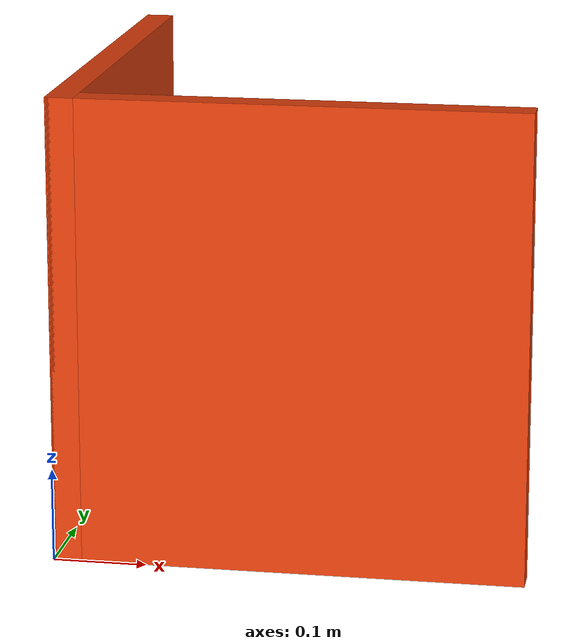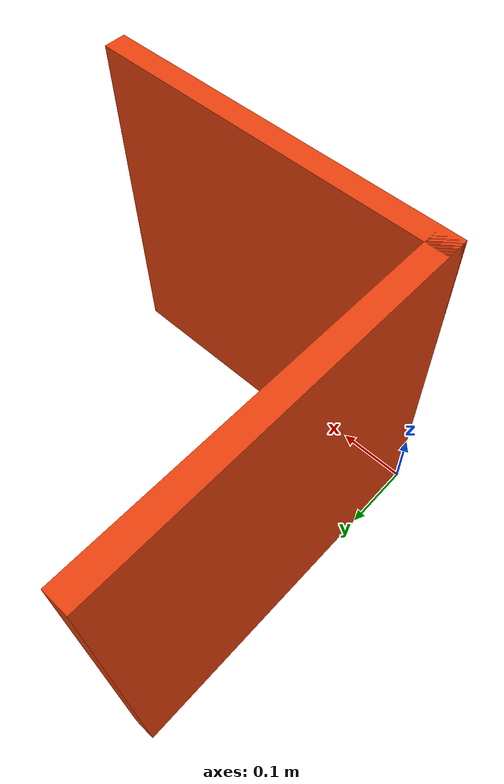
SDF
<?xml version="1.0"?>
<sdf version="1.6">
  <model name="l_obstacle_50cm">
    <static>true</static>

    <link name="x_wall_link">
      <pose>0.25 0.015 0.25 0 0 0</pose>
      <visual name="visual">
        <geometry>
          <box>
            <size>0.50 0.03 0.50</size>
          </box>
        </geometry>
        <material>
          <ambient>0.90 0.25 0.05 1.0</ambient>
          <diffuse>0.90 0.25 0.05 1.0</diffuse>
          <specular>0.10 0.10 0.10 1.0</specular>
        </material>
      </visual>
      <collision name="collision">
        <geometry>
          <box>
            <size>0.50 0.03 0.50</size>
          </box>
        </geometry>
      </collision>
      <inertial>
        <mass>0.6</mass>
        <inertia>
          <ixx>0.0125</ixx>
          <iyy>0.0250</iyy>
          <izz>0.0125</izz>
          <ixy>0.0</ixy>
          <ixz>0.0</ixz>
          <iyz>0.0</iyz>
        </inertia>
      </inertial>
    </link>

    <link name="y_wall_link">
      <pose>0.015 0.25 0.25 0 0 0</pose>
      <visual name="visual">
        <geometry>
          <box>
            <size>0.03 0.50 0.50</size>
          </box>
        </geometry>
        <material>
          <ambient>0.90 0.25 0.05 1.0</ambient>
          <diffuse>0.90 0.25 0.05 1.0</diffuse>
          <specular>0.10 0.10 0.10 1.0</specular>
        </material>
      </visual>
      <collision name="collision">
        <geometry>
          <box>
            <size>0.03 0.50 0.50</size>
          </box>
        </geometry>
      </collision>
      <inertial>
        <mass>0.6</mass>
        <inertia>
          <ixx>0.0250</ixx>
          <iyy>0.0125</iyy>
          <izz>0.0125</izz>
          <ixy>0.0</ixy>
          <ixz>0.0</ixz>
          <iyz>0.0</iyz>
        </inertia>
      </inertial>
    </link>
  </model>
</sdf>
